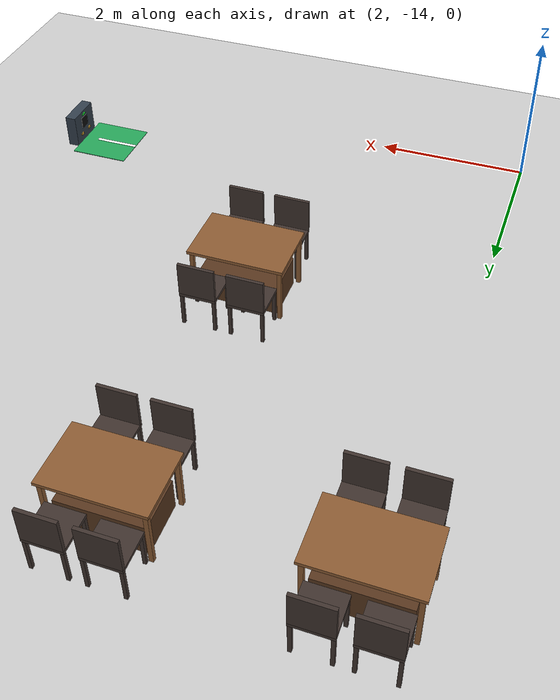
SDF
<sdf version="1.6">
 <world name="restaurant">
  <model name="ground_plane">
   <static>1</static>
   <link name="link">
    <collision name="collision">
     <geometry><plane><normal>0 0 1</normal><size>100 100</size></plane></geometry>
     <surface><friction><ode><mu>100</mu><mu2>50</mu2></ode></friction></surface>
    </collision>
    <visual name="visual">
     <cast_shadows>0</cast_shadows>
     <geometry><plane><normal>0 0 1</normal><size>100 100</size></plane></geometry>
     <material>
      <script><uri>file://media/materials/scripts/gazebo.material</uri><name>Gazebo/Grey</name></script>
     </material>
    </visual>
   </link>
  </model>
  <model name="table_16">
   <static>true</static>
   <pose>2.1640 -6.7909 0 0 0 0</pose>
   <link name="link">
    <collision name="base_collision">
     <pose>0.0000 0.0000 0.2000 0 0 0</pose>
     <geometry><box><size>1.0000 0.6000 0.4000</size></box></geometry>
    </collision>
    <visual name="base_visual">
     <pose>0.0000 0.0000 0.2000 0 0 0</pose>
     <geometry><box><size>1.0000 0.6000 0.4000</size></box></geometry>
     <material>
      <ambient>0.35 0.22 0.12 1</ambient>
      <diffuse>0.35 0.22 0.12 1</diffuse>
      <specular>0.05 0.05 0.05 1</specular>
     </material>
    </visual>
    <collision name="top_collision">
     <pose>0.0000 0.0000 0.7300 0 0 0</pose>
     <geometry><box><size>1.2000 0.8000 0.0400</size></box></geometry>
    </collision>
    <visual name="top_visual">
     <pose>0.0000 0.0000 0.7300 0 0 0</pose>
     <geometry><box><size>1.2000 0.8000 0.0400</size></box></geometry>
     <material>
      <ambient>0.55 0.36 0.2 1</ambient>
      <diffuse>0.55 0.36 0.2 1</diffuse>
      <specular>0.05 0.05 0.05 1</specular>
     </material>
    </visual>
    <collision name="leg0_collision">
     <pose>0.5500 0.3500 0.3550 0 0 0</pose>
     <geometry><box><size>0.0500 0.0500 0.7100</size></box></geometry>
    </collision>
    <visual name="leg0_visual">
     <pose>0.5500 0.3500 0.3550 0 0 0</pose>
     <geometry><box><size>0.0500 0.0500 0.7100</size></box></geometry>
     <material>
      <ambient>0.55 0.36 0.2 1</ambient>
      <diffuse>0.55 0.36 0.2 1</diffuse>
      <specular>0.05 0.05 0.05 1</specular>
     </material>
    </visual>
    <collision name="leg1_collision">
     <pose>0.5500 -0.3500 0.3550 0 0 0</pose>
     <geometry><box><size>0.0500 0.0500 0.7100</size></box></geometry>
    </collision>
    <visual name="leg1_visual">
     <pose>0.5500 -0.3500 0.3550 0 0 0</pose>
     <geometry><box><size>0.0500 0.0500 0.7100</size></box></geometry>
     <material>
      <ambient>0.55 0.36 0.2 1</ambient>
      <diffuse>0.55 0.36 0.2 1</diffuse>
      <specular>0.05 0.05 0.05 1</specular>
     </material>
    </visual>
    <collision name="leg2_collision">
     <pose>-0.5500 0.3500 0.3550 0 0 0</pose>
     <geometry><box><size>0.0500 0.0500 0.7100</size></box></geometry>
    </collision>
    <visual name="leg2_visual">
     <pose>-0.5500 0.3500 0.3550 0 0 0</pose>
     <geometry><box><size>0.0500 0.0500 0.7100</size></box></geometry>
     <material>
      <ambient>0.55 0.36 0.2 1</ambient>
      <diffuse>0.55 0.36 0.2 1</diffuse>
      <specular>0.05 0.05 0.05 1</specular>
     </material>
    </visual>
    <collision name="leg3_collision">
     <pose>-0.5500 -0.3500 0.3550 0 0 0</pose>
     <geometry><box><size>0.0500 0.0500 0.7100</size></box></geometry>
    </collision>
    <visual name="leg3_visual">
     <pose>-0.5500 -0.3500 0.3550 0 0 0</pose>
     <geometry><box><size>0.0500 0.0500 0.7100</size></box></geometry>
     <material>
      <ambient>0.55 0.36 0.2 1</ambient>
      <diffuse>0.55 0.36 0.2 1</diffuse>
      <specular>0.05 0.05 0.05 1</specular>
     </material>
    </visual>
    <collision name="chair0_seat_collision">
     <pose>-0.3000 0.6000 0.4500 0 0 0</pose>
     <geometry><box><size>0.4500 0.4500 0.0400</size></box></geometry>
    </collision>
    <visual name="chair0_seat_visual">
     <pose>-0.3000 0.6000 0.4500 0 0 0</pose>
     <geometry><box><size>0.4500 0.4500 0.0400</size></box></geometry>
     <material>
      <ambient>0.25 0.2 0.18 1</ambient>
      <diffuse>0.25 0.2 0.18 1</diffuse>
      <specular>0.05 0.05 0.05 1</specular>
     </material>
    </visual>
    <collision name="chair0_leg0_collision">
     <pose>-0.1000 0.8000 0.2150 0 0 0</pose>
     <geometry><box><size>0.0400 0.0400 0.4300</size></box></geometry>
    </collision>
    <visual name="chair0_leg0_visual">
     <pose>-0.1000 0.8000 0.2150 0 0 0</pose>
     <geometry><box><size>0.0400 0.0400 0.4300</size></box></geometry>
     <material>
      <ambient>0.25 0.2 0.18 1</ambient>
      <diffuse>0.25 0.2 0.18 1</diffuse>
      <specular>0.05 0.05 0.05 1</specular>
     </material>
    </visual>
    <collision name="chair0_leg1_collision">
     <pose>-0.1000 0.4000 0.2150 0 0 0</pose>
     <geometry><box><size>0.0400 0.0400 0.4300</size></box></geometry>
    </collision>
    <visual name="chair0_leg1_visual">
     <pose>-0.1000 0.4000 0.2150 0 0 0</pose>
     <geometry><box><size>0.0400 0.0400 0.4300</size></box></geometry>
     <material>
      <ambient>0.25 0.2 0.18 1</ambient>
      <diffuse>0.25 0.2 0.18 1</diffuse>
      <specular>0.05 0.05 0.05 1</specular>
     </material>
    </visual>
    <collision name="chair0_leg2_collision">
     <pose>-0.5000 0.8000 0.2150 0 0 0</pose>
     <geometry><box><size>0.0400 0.0400 0.4300</size></box></geometry>
    </collision>
    <visual name="chair0_leg2_visual">
     <pose>-0.5000 0.8000 0.2150 0 0 0</pose>
     <geometry><box><size>0.0400 0.0400 0.4300</size></box></geometry>
     <material>
      <ambient>0.25 0.2 0.18 1</ambient>
      <diffuse>0.25 0.2 0.18 1</diffuse>
      <specular>0.05 0.05 0.05 1</specular>
     </material>
    </visual>
    <collision name="chair0_leg3_collision">
     <pose>-0.5000 0.4000 0.2150 0 0 0</pose>
     <geometry><box><size>0.0400 0.0400 0.4300</size></box></geometry>
    </collision>
    <visual name="chair0_leg3_visual">
     <pose>-0.5000 0.4000 0.2150 0 0 0</pose>
     <geometry><box><size>0.0400 0.0400 0.4300</size></box></geometry>
     <material>
      <ambient>0.25 0.2 0.18 1</ambient>
      <diffuse>0.25 0.2 0.18 1</diffuse>
      <specular>0.05 0.05 0.05 1</specular>
     </material>
    </visual>
    <collision name="chair0_back_collision">
     <pose>-0.3000 0.8050 0.6850 0 0 0</pose>
     <geometry><box><size>0.4500 0.0400 0.4300</size></box></geometry>
    </collision>
    <visual name="chair0_back_visual">
     <pose>-0.3000 0.8050 0.6850 0 0 0</pose>
     <geometry><box><size>0.4500 0.0400 0.4300</size></box></geometry>
     <material>
      <ambient>0.25 0.2 0.18 1</ambient>
      <diffuse>0.25 0.2 0.18 1</diffuse>
      <specular>0.05 0.05 0.05 1</specular>
     </material>
    </visual>
    <collision name="chair1_seat_collision">
     <pose>-0.3000 -0.6000 0.4500 0 0 0</pose>
     <geometry><box><size>0.4500 0.4500 0.0400</size></box></geometry>
    </collision>
    <visual name="chair1_seat_visual">
     <pose>-0.3000 -0.6000 0.4500 0 0 0</pose>
     <geometry><box><size>0.4500 0.4500 0.0400</size></box></geometry>
     <material>
      <ambient>0.25 0.2 0.18 1</ambient>
      <diffuse>0.25 0.2 0.18 1</diffuse>
      <specular>0.05 0.05 0.05 1</specular>
     </material>
    </visual>
    <collision name="chair1_leg0_collision">
     <pose>-0.1000 -0.4000 0.2150 0 0 0</pose>
     <geometry><box><size>0.0400 0.0400 0.4300</size></box></geometry>
    </collision>
    <visual name="chair1_leg0_visual">
     <pose>-0.1000 -0.4000 0.2150 0 0 0</pose>
     <geometry><box><size>0.0400 0.0400 0.4300</size></box></geometry>
     <material>
      <ambient>0.25 0.2 0.18 1</ambient>
      <diffuse>0.25 0.2 0.18 1</diffuse>
      <specular>0.05 0.05 0.05 1</specular>
     </material>
    </visual>
    <collision name="chair1_leg1_collision">
     <pose>-0.1000 -0.8000 0.2150 0 0 0</pose>
     <geometry><box><size>0.0400 0.0400 0.4300</size></box></geometry>
    </collision>
    <visual name="chair1_leg1_visual">
     <pose>-0.1000 -0.8000 0.2150 0 0 0</pose>
     <geometry><box><size>0.0400 0.0400 0.4300</size></box></geometry>
     <material>
      <ambient>0.25 0.2 0.18 1</ambient>
      <diffuse>0.25 0.2 0.18 1</diffuse>
      <specular>0.05 0.05 0.05 1</specular>
     </material>
    </visual>
    <collision name="chair1_leg2_collision">
     <pose>-0.5000 -0.4000 0.2150 0 0 0</pose>
     <geometry><box><size>0.0400 0.0400 0.4300</size></box></geometry>
    </collision>
    <visual name="chair1_leg2_visual">
     <pose>-0.5000 -0.4000 0.2150 0 0 0</pose>
     <geometry><box><size>0.0400 0.0400 0.4300</size></box></geometry>
     <material>
      <ambient>0.25 0.2 0.18 1</ambient>
      <diffuse>0.25 0.2 0.18 1</diffuse>
      <specular>0.05 0.05 0.05 1</specular>
     </material>
    </visual>
    <collision name="chair1_leg3_collision">
     <pose>-0.5000 -0.8000 0.2150 0 0 0</pose>
     <geometry><box><size>0.0400 0.0400 0.4300</size></box></geometry>
    </collision>
    <visual name="chair1_leg3_visual">
     <pose>-0.5000 -0.8000 0.2150 0 0 0</pose>
     <geometry><box><size>0.0400 0.0400 0.4300</size></box></geometry>
     <material>
      <ambient>0.25 0.2 0.18 1</ambient>
      <diffuse>0.25 0.2 0.18 1</diffuse>
      <specular>0.05 0.05 0.05 1</specular>
     </material>
    </visual>
    <collision name="chair1_back_collision">
     <pose>-0.3000 -0.8050 0.6850 0 0 0</pose>
     <geometry><box><size>0.4500 0.0400 0.4300</size></box></geometry>
    </collision>
    <visual name="chair1_back_visual">
     <pose>-0.3000 -0.8050 0.6850 0 0 0</pose>
     <geometry><box><size>0.4500 0.0400 0.4300</size></box></geometry>
     <material>
      <ambient>0.25 0.2 0.18 1</ambient>
      <diffuse>0.25 0.2 0.18 1</diffuse>
      <specular>0.05 0.05 0.05 1</specular>
     </material>
    </visual>
    <collision name="chair2_seat_collision">
     <pose>0.3000 0.6000 0.4500 0 0 0</pose>
     <geometry><box><size>0.4500 0.4500 0.0400</size></box></geometry>
    </collision>
    <visual name="chair2_seat_visual">
     <pose>0.3000 0.6000 0.4500 0 0 0</pose>
     <geometry><box><size>0.4500 0.4500 0.0400</size></box></geometry>
     <material>
      <ambient>0.25 0.2 0.18 1</ambient>
      <diffuse>0.25 0.2 0.18 1</diffuse>
      <specular>0.05 0.05 0.05 1</specular>
     </material>
    </visual>
    <collision name="chair2_leg0_collision">
     <pose>0.5000 0.8000 0.2150 0 0 0</pose>
     <geometry><box><size>0.0400 0.0400 0.4300</size></box></geometry>
    </collision>
    <visual name="chair2_leg0_visual">
     <pose>0.5000 0.8000 0.2150 0 0 0</pose>
     <geometry><box><size>0.0400 0.0400 0.4300</size></box></geometry>
     <material>
      <ambient>0.25 0.2 0.18 1</ambient>
      <diffuse>0.25 0.2 0.18 1</diffuse>
      <specular>0.05 0.05 0.05 1</specular>
     </material>
    </visual>
    <collision name="chair2_leg1_collision">
     <pose>0.5000 0.4000 0.2150 0 0 0</pose>
     <geometry><box><size>0.0400 0.0400 0.4300</size></box></geometry>
    </collision>
    <visual name="chair2_leg1_visual">
     <pose>0.5000 0.4000 0.2150 0 0 0</pose>
     <geometry><box><size>0.0400 0.0400 0.4300</size></box></geometry>
     <material>
      <ambient>0.25 0.2 0.18 1</ambient>
      <diffuse>0.25 0.2 0.18 1</diffuse>
      <specular>0.05 0.05 0.05 1</specular>
     </material>
    </visual>
    <collision name="chair2_leg2_collision">
     <pose>0.1000 0.8000 0.2150 0 0 0</pose>
     <geometry><box><size>0.0400 0.0400 0.4300</size></box></geometry>
    </collision>
    <visual name="chair2_leg2_visual">
     <pose>0.1000 0.8000 0.2150 0 0 0</pose>
     <geometry><box><size>0.0400 0.0400 0.4300</size></box></geometry>
     <material>
      <ambient>0.25 0.2 0.18 1</ambient>
      <diffuse>0.25 0.2 0.18 1</diffuse>
      <specular>0.05 0.05 0.05 1</specular>
     </material>
    </visual>
    <collision name="chair2_leg3_collision">
     <pose>0.1000 0.4000 0.2150 0 0 0</pose>
     <geometry><box><size>0.0400 0.0400 0.4300</size></box></geometry>
    </collision>
    <visual name="chair2_leg3_visual">
     <pose>0.1000 0.4000 0.2150 0 0 0</pose>
     <geometry><box><size>0.0400 0.0400 0.4300</size></box></geometry>
     <material>
      <ambient>0.25 0.2 0.18 1</ambient>
      <diffuse>0.25 0.2 0.18 1</diffuse>
      <specular>0.05 0.05 0.05 1</specular>
     </material>
    </visual>
    <collision name="chair2_back_collision">
     <pose>0.3000 0.8050 0.6850 0 0 0</pose>
     <geometry><box><size>0.4500 0.0400 0.4300</size></box></geometry>
    </collision>
    <visual name="chair2_back_visual">
     <pose>0.3000 0.8050 0.6850 0 0 0</pose>
     <geometry><box><size>0.4500 0.0400 0.4300</size></box></geometry>
     <material>
      <ambient>0.25 0.2 0.18 1</ambient>
      <diffuse>0.25 0.2 0.18 1</diffuse>
      <specular>0.05 0.05 0.05 1</specular>
     </material>
    </visual>
    <collision name="chair3_seat_collision">
     <pose>0.3000 -0.6000 0.4500 0 0 0</pose>
     <geometry><box><size>0.4500 0.4500 0.0400</size></box></geometry>
    </collision>
    <visual name="chair3_seat_visual">
     <pose>0.3000 -0.6000 0.4500 0 0 0</pose>
     <geometry><box><size>0.4500 0.4500 0.0400</size></box></geometry>
     <material>
      <ambient>0.25 0.2 0.18 1</ambient>
      <diffuse>0.25 0.2 0.18 1</diffuse>
      <specular>0.05 0.05 0.05 1</specular>
     </material>
    </visual>
    <collision name="chair3_leg0_collision">
     <pose>0.5000 -0.4000 0.2150 0 0 0</pose>
     <geometry><box><size>0.0400 0.0400 0.4300</size></box></geometry>
    </collision>
    <visual name="chair3_leg0_visual">
     <pose>0.5000 -0.4000 0.2150 0 0 0</pose>
     <geometry><box><size>0.0400 0.0400 0.4300</size></box></geometry>
     <material>
      <ambient>0.25 0.2 0.18 1</ambient>
      <diffuse>0.25 0.2 0.18 1</diffuse>
      <specular>0.05 0.05 0.05 1</specular>
     </material>
    </visual>
    <collision name="chair3_leg1_collision">
     <pose>0.5000 -0.8000 0.2150 0 0 0</pose>
     <geometry><box><size>0.0400 0.0400 0.4300</size></box></geometry>
    </collision>
    <visual name="chair3_leg1_visual">
     <pose>0.5000 -0.8000 0.2150 0 0 0</pose>
     <geometry><box><size>0.0400 0.0400 0.4300</size></box></geometry>
     <material>
      <ambient>0.25 0.2 0.18 1</ambient>
      <diffuse>0.25 0.2 0.18 1</diffuse>
      <specular>0.05 0.05 0.05 1</specular>
     </material>
    </visual>
    <collision name="chair3_leg2_collision">
     <pose>0.1000 -0.4000 0.2150 0 0 0</pose>
     <geometry><box><size>0.0400 0.0400 0.4300</size></box></geometry>
    </collision>
    <visual name="chair3_leg2_visual">
     <pose>0.1000 -0.4000 0.2150 0 0 0</pose>
     <geometry><box><size>0.0400 0.0400 0.4300</size></box></geometry>
     <material>
      <ambient>0.25 0.2 0.18 1</ambient>
      <diffuse>0.25 0.2 0.18 1</diffuse>
      <specular>0.05 0.05 0.05 1</specular>
     </material>
    </visual>
    <collision name="chair3_leg3_collision">
     <pose>0.1000 -0.8000 0.2150 0 0 0</pose>
     <geometry><box><size>0.0400 0.0400 0.4300</size></box></geometry>
    </collision>
    <visual name="chair3_leg3_visual">
     <pose>0.1000 -0.8000 0.2150 0 0 0</pose>
     <geometry><box><size>0.0400 0.0400 0.4300</size></box></geometry>
     <material>
      <ambient>0.25 0.2 0.18 1</ambient>
      <diffuse>0.25 0.2 0.18 1</diffuse>
      <specular>0.05 0.05 0.05 1</specular>
     </material>
    </visual>
    <collision name="chair3_back_collision">
     <pose>0.3000 -0.8050 0.6850 0 0 0</pose>
     <geometry><box><size>0.4500 0.0400 0.4300</size></box></geometry>
    </collision>
    <visual name="chair3_back_visual">
     <pose>0.3000 -0.8050 0.6850 0 0 0</pose>
     <geometry><box><size>0.4500 0.0400 0.4300</size></box></geometry>
     <material>
      <ambient>0.25 0.2 0.18 1</ambient>
      <diffuse>0.25 0.2 0.18 1</diffuse>
      <specular>0.05 0.05 0.05 1</specular>
     </material>
    </visual>
   </link>
  </model>
  <model name="table_17">
   <static>true</static>
   <pose>4.7640 -6.7909 0 0 0 0</pose>
   <link name="link">
    <collision name="base_collision">
     <pose>0.0000 0.0000 0.2000 0 0 0</pose>
     <geometry><box><size>1.0000 0.6000 0.4000</size></box></geometry>
    </collision>
    <visual name="base_visual">
     <pose>0.0000 0.0000 0.2000 0 0 0</pose>
     <geometry><box><size>1.0000 0.6000 0.4000</size></box></geometry>
     <material>
      <ambient>0.35 0.22 0.12 1</ambient>
      <diffuse>0.35 0.22 0.12 1</diffuse>
      <specular>0.05 0.05 0.05 1</specular>
     </material>
    </visual>
    <collision name="top_collision">
     <pose>0.0000 0.0000 0.7300 0 0 0</pose>
     <geometry><box><size>1.2000 0.8000 0.0400</size></box></geometry>
    </collision>
    <visual name="top_visual">
     <pose>0.0000 0.0000 0.7300 0 0 0</pose>
     <geometry><box><size>1.2000 0.8000 0.0400</size></box></geometry>
     <material>
      <ambient>0.55 0.36 0.2 1</ambient>
      <diffuse>0.55 0.36 0.2 1</diffuse>
      <specular>0.05 0.05 0.05 1</specular>
     </material>
    </visual>
    <collision name="leg0_collision">
     <pose>0.5500 0.3500 0.3550 0 0 0</pose>
     <geometry><box><size>0.0500 0.0500 0.7100</size></box></geometry>
    </collision>
    <visual name="leg0_visual">
     <pose>0.5500 0.3500 0.3550 0 0 0</pose>
     <geometry><box><size>0.0500 0.0500 0.7100</size></box></geometry>
     <material>
      <ambient>0.55 0.36 0.2 1</ambient>
      <diffuse>0.55 0.36 0.2 1</diffuse>
      <specular>0.05 0.05 0.05 1</specular>
     </material>
    </visual>
    <collision name="leg1_collision">
     <pose>0.5500 -0.3500 0.3550 0 0 0</pose>
     <geometry><box><size>0.0500 0.0500 0.7100</size></box></geometry>
    </collision>
    <visual name="leg1_visual">
     <pose>0.5500 -0.3500 0.3550 0 0 0</pose>
     <geometry><box><size>0.0500 0.0500 0.7100</size></box></geometry>
     <material>
      <ambient>0.55 0.36 0.2 1</ambient>
      <diffuse>0.55 0.36 0.2 1</diffuse>
      <specular>0.05 0.05 0.05 1</specular>
     </material>
    </visual>
    <collision name="leg2_collision">
     <pose>-0.5500 0.3500 0.3550 0 0 0</pose>
     <geometry><box><size>0.0500 0.0500 0.7100</size></box></geometry>
    </collision>
    <visual name="leg2_visual">
     <pose>-0.5500 0.3500 0.3550 0 0 0</pose>
     <geometry><box><size>0.0500 0.0500 0.7100</size></box></geometry>
     <material>
      <ambient>0.55 0.36 0.2 1</ambient>
      <diffuse>0.55 0.36 0.2 1</diffuse>
      <specular>0.05 0.05 0.05 1</specular>
     </material>
    </visual>
    <collision name="leg3_collision">
     <pose>-0.5500 -0.3500 0.3550 0 0 0</pose>
     <geometry><box><size>0.0500 0.0500 0.7100</size></box></geometry>
    </collision>
    <visual name="leg3_visual">
     <pose>-0.5500 -0.3500 0.3550 0 0 0</pose>
     <geometry><box><size>0.0500 0.0500 0.7100</size></box></geometry>
     <material>
      <ambient>0.55 0.36 0.2 1</ambient>
      <diffuse>0.55 0.36 0.2 1</diffuse>
      <specular>0.05 0.05 0.05 1</specular>
     </material>
    </visual>
    <collision name="chair0_seat_collision">
     <pose>-0.3000 0.6000 0.4500 0 0 0</pose>
     <geometry><box><size>0.4500 0.4500 0.0400</size></box></geometry>
    </collision>
    <visual name="chair0_seat_visual">
     <pose>-0.3000 0.6000 0.4500 0 0 0</pose>
     <geometry><box><size>0.4500 0.4500 0.0400</size></box></geometry>
     <material>
      <ambient>0.25 0.2 0.18 1</ambient>
      <diffuse>0.25 0.2 0.18 1</diffuse>
      <specular>0.05 0.05 0.05 1</specular>
     </material>
    </visual>
    <collision name="chair0_leg0_collision">
     <pose>-0.1000 0.8000 0.2150 0 0 0</pose>
     <geometry><box><size>0.0400 0.0400 0.4300</size></box></geometry>
    </collision>
    <visual name="chair0_leg0_visual">
     <pose>-0.1000 0.8000 0.2150 0 0 0</pose>
     <geometry><box><size>0.0400 0.0400 0.4300</size></box></geometry>
     <material>
      <ambient>0.25 0.2 0.18 1</ambient>
      <diffuse>0.25 0.2 0.18 1</diffuse>
      <specular>0.05 0.05 0.05 1</specular>
     </material>
    </visual>
    <collision name="chair0_leg1_collision">
     <pose>-0.1000 0.4000 0.2150 0 0 0</pose>
     <geometry><box><size>0.0400 0.0400 0.4300</size></box></geometry>
    </collision>
    <visual name="chair0_leg1_visual">
     <pose>-0.1000 0.4000 0.2150 0 0 0</pose>
     <geometry><box><size>0.0400 0.0400 0.4300</size></box></geometry>
     <material>
      <ambient>0.25 0.2 0.18 1</ambient>
      <diffuse>0.25 0.2 0.18 1</diffuse>
      <specular>0.05 0.05 0.05 1</specular>
     </material>
    </visual>
    <collision name="chair0_leg2_collision">
     <pose>-0.5000 0.8000 0.2150 0 0 0</pose>
     <geometry><box><size>0.0400 0.0400 0.4300</size></box></geometry>
    </collision>
    <visual name="chair0_leg2_visual">
     <pose>-0.5000 0.8000 0.2150 0 0 0</pose>
     <geometry><box><size>0.0400 0.0400 0.4300</size></box></geometry>
     <material>
      <ambient>0.25 0.2 0.18 1</ambient>
      <diffuse>0.25 0.2 0.18 1</diffuse>
      <specular>0.05 0.05 0.05 1</specular>
     </material>
    </visual>
    <collision name="chair0_leg3_collision">
     <pose>-0.5000 0.4000 0.2150 0 0 0</pose>
     <geometry><box><size>0.0400 0.0400 0.4300</size></box></geometry>
    </collision>
    <visual name="chair0_leg3_visual">
     <pose>-0.5000 0.4000 0.2150 0 0 0</pose>
     <geometry><box><size>0.0400 0.0400 0.4300</size></box></geometry>
     <material>
      <ambient>0.25 0.2 0.18 1</ambient>
      <diffuse>0.25 0.2 0.18 1</diffuse>
      <specular>0.05 0.05 0.05 1</specular>
     </material>
    </visual>
    <collision name="chair0_back_collision">
     <pose>-0.3000 0.8050 0.6850 0 0 0</pose>
     <geometry><box><size>0.4500 0.0400 0.4300</size></box></geometry>
    </collision>
    <visual name="chair0_back_visual">
     <pose>-0.3000 0.8050 0.6850 0 0 0</pose>
     <geometry><box><size>0.4500 0.0400 0.4300</size></box></geometry>
     <material>
      <ambient>0.25 0.2 0.18 1</ambient>
      <diffuse>0.25 0.2 0.18 1</diffuse>
      <specular>0.05 0.05 0.05 1</specular>
     </material>
    </visual>
    <collision name="chair1_seat_collision">
     <pose>-0.3000 -0.6000 0.4500 0 0 0</pose>
     <geometry><box><size>0.4500 0.4500 0.0400</size></box></geometry>
    </collision>
    <visual name="chair1_seat_visual">
     <pose>-0.3000 -0.6000 0.4500 0 0 0</pose>
     <geometry><box><size>0.4500 0.4500 0.0400</size></box></geometry>
     <material>
      <ambient>0.25 0.2 0.18 1</ambient>
      <diffuse>0.25 0.2 0.18 1</diffuse>
      <specular>0.05 0.05 0.05 1</specular>
     </material>
    </visual>
    <collision name="chair1_leg0_collision">
     <pose>-0.1000 -0.4000 0.2150 0 0 0</pose>
     <geometry><box><size>0.0400 0.0400 0.4300</size></box></geometry>
    </collision>
    <visual name="chair1_leg0_visual">
     <pose>-0.1000 -0.4000 0.2150 0 0 0</pose>
     <geometry><box><size>0.0400 0.0400 0.4300</size></box></geometry>
     <material>
      <ambient>0.25 0.2 0.18 1</ambient>
      <diffuse>0.25 0.2 0.18 1</diffuse>
      <specular>0.05 0.05 0.05 1</specular>
     </material>
    </visual>
    <collision name="chair1_leg1_collision">
     <pose>-0.1000 -0.8000 0.2150 0 0 0</pose>
     <geometry><box><size>0.0400 0.0400 0.4300</size></box></geometry>
    </collision>
    <visual name="chair1_leg1_visual">
     <pose>-0.1000 -0.8000 0.2150 0 0 0</pose>
     <geometry><box><size>0.0400 0.0400 0.4300</size></box></geometry>
     <material>
      <ambient>0.25 0.2 0.18 1</ambient>
      <diffuse>0.25 0.2 0.18 1</diffuse>
      <specular>0.05 0.05 0.05 1</specular>
     </material>
    </visual>
    <collision name="chair1_leg2_collision">
     <pose>-0.5000 -0.4000 0.2150 0 0 0</pose>
     <geometry><box><size>0.0400 0.0400 0.4300</size></box></geometry>
    </collision>
    <visual name="chair1_leg2_visual">
     <pose>-0.5000 -0.4000 0.2150 0 0 0</pose>
     <geometry><box><size>0.0400 0.0400 0.4300</size></box></geometry>
     <material>
      <ambient>0.25 0.2 0.18 1</ambient>
      <diffuse>0.25 0.2 0.18 1</diffuse>
      <specular>0.05 0.05 0.05 1</specular>
     </material>
    </visual>
    <collision name="chair1_leg3_collision">
     <pose>-0.5000 -0.8000 0.2150 0 0 0</pose>
     <geometry><box><size>0.0400 0.0400 0.4300</size></box></geometry>
    </collision>
    <visual name="chair1_leg3_visual">
     <pose>-0.5000 -0.8000 0.2150 0 0 0</pose>
     <geometry><box><size>0.0400 0.0400 0.4300</size></box></geometry>
     <material>
      <ambient>0.25 0.2 0.18 1</ambient>
      <diffuse>0.25 0.2 0.18 1</diffuse>
      <specular>0.05 0.05 0.05 1</specular>
     </material>
    </visual>
    <collision name="chair1_back_collision">
     <pose>-0.3000 -0.8050 0.6850 0 0 0</pose>
     <geometry><box><size>0.4500 0.0400 0.4300</size></box></geometry>
    </collision>
    <visual name="chair1_back_visual">
     <pose>-0.3000 -0.8050 0.6850 0 0 0</pose>
     <geometry><box><size>0.4500 0.0400 0.4300</size></box></geometry>
     <material>
      <ambient>0.25 0.2 0.18 1</ambient>
      <diffuse>0.25 0.2 0.18 1</diffuse>
      <specular>0.05 0.05 0.05 1</specular>
     </material>
    </visual>
    <collision name="chair2_seat_collision">
     <pose>0.3000 0.6000 0.4500 0 0 0</pose>
     <geometry><box><size>0.4500 0.4500 0.0400</size></box></geometry>
    </collision>
    <visual name="chair2_seat_visual">
     <pose>0.3000 0.6000 0.4500 0 0 0</pose>
     <geometry><box><size>0.4500 0.4500 0.0400</size></box></geometry>
     <material>
      <ambient>0.25 0.2 0.18 1</ambient>
      <diffuse>0.25 0.2 0.18 1</diffuse>
      <specular>0.05 0.05 0.05 1</specular>
     </material>
    </visual>
    <collision name="chair2_leg0_collision">
     <pose>0.5000 0.8000 0.2150 0 0 0</pose>
     <geometry><box><size>0.0400 0.0400 0.4300</size></box></geometry>
    </collision>
    <visual name="chair2_leg0_visual">
     <pose>0.5000 0.8000 0.2150 0 0 0</pose>
     <geometry><box><size>0.0400 0.0400 0.4300</size></box></geometry>
     <material>
      <ambient>0.25 0.2 0.18 1</ambient>
      <diffuse>0.25 0.2 0.18 1</diffuse>
      <specular>0.05 0.05 0.05 1</specular>
     </material>
    </visual>
    <collision name="chair2_leg1_collision">
     <pose>0.5000 0.4000 0.2150 0 0 0</pose>
     <geometry><box><size>0.0400 0.0400 0.4300</size></box></geometry>
    </collision>
    <visual name="chair2_leg1_visual">
     <pose>0.5000 0.4000 0.2150 0 0 0</pose>
     <geometry><box><size>0.0400 0.0400 0.4300</size></box></geometry>
     <material>
      <ambient>0.25 0.2 0.18 1</ambient>
      <diffuse>0.25 0.2 0.18 1</diffuse>
      <specular>0.05 0.05 0.05 1</specular>
     </material>
    </visual>
    <collision name="chair2_leg2_collision">
     <pose>0.1000 0.8000 0.2150 0 0 0</pose>
     <geometry><box><size>0.0400 0.0400 0.4300</size></box></geometry>
    </collision>
    <visual name="chair2_leg2_visual">
     <pose>0.1000 0.8000 0.2150 0 0 0</pose>
     <geometry><box><size>0.0400 0.0400 0.4300</size></box></geometry>
     <material>
      <ambient>0.25 0.2 0.18 1</ambient>
      <diffuse>0.25 0.2 0.18 1</diffuse>
      <specular>0.05 0.05 0.05 1</specular>
     </material>
    </visual>
    <collision name="chair2_leg3_collision">
     <pose>0.1000 0.4000 0.2150 0 0 0</pose>
     <geometry><box><size>0.0400 0.0400 0.4300</size></box></geometry>
    </collision>
    <visual name="chair2_leg3_visual">
     <pose>0.1000 0.4000 0.2150 0 0 0</pose>
     <geometry><box><size>0.0400 0.0400 0.4300</size></box></geometry>
     <material>
      <ambient>0.25 0.2 0.18 1</ambient>
      <diffuse>0.25 0.2 0.18 1</diffuse>
      <specular>0.05 0.05 0.05 1</specular>
     </material>
    </visual>
    <collision name="chair2_back_collision">
     <pose>0.3000 0.8050 0.6850 0 0 0</pose>
     <geometry><box><size>0.4500 0.0400 0.4300</size></box></geometry>
    </collision>
    <visual name="chair2_back_visual">
     <pose>0.3000 0.8050 0.6850 0 0 0</pose>
     <geometry><box><size>0.4500 0.0400 0.4300</size></box></geometry>
     <material>
      <ambient>0.25 0.2 0.18 1</ambient>
      <diffuse>0.25 0.2 0.18 1</diffuse>
      <specular>0.05 0.05 0.05 1</specular>
     </material>
    </visual>
    <collision name="chair3_seat_collision">
     <pose>0.3000 -0.6000 0.4500 0 0 0</pose>
     <geometry><box><size>0.4500 0.4500 0.0400</size></box></geometry>
    </collision>
    <visual name="chair3_seat_visual">
     <pose>0.3000 -0.6000 0.4500 0 0 0</pose>
     <geometry><box><size>0.4500 0.4500 0.0400</size></box></geometry>
     <material>
      <ambient>0.25 0.2 0.18 1</ambient>
      <diffuse>0.25 0.2 0.18 1</diffuse>
      <specular>0.05 0.05 0.05 1</specular>
     </material>
    </visual>
    <collision name="chair3_leg0_collision">
     <pose>0.5000 -0.4000 0.2150 0 0 0</pose>
     <geometry><box><size>0.0400 0.0400 0.4300</size></box></geometry>
    </collision>
    <visual name="chair3_leg0_visual">
     <pose>0.5000 -0.4000 0.2150 0 0 0</pose>
     <geometry><box><size>0.0400 0.0400 0.4300</size></box></geometry>
     <material>
      <ambient>0.25 0.2 0.18 1</ambient>
      <diffuse>0.25 0.2 0.18 1</diffuse>
      <specular>0.05 0.05 0.05 1</specular>
     </material>
    </visual>
    <collision name="chair3_leg1_collision">
     <pose>0.5000 -0.8000 0.2150 0 0 0</pose>
     <geometry><box><size>0.0400 0.0400 0.4300</size></box></geometry>
    </collision>
    <visual name="chair3_leg1_visual">
     <pose>0.5000 -0.8000 0.2150 0 0 0</pose>
     <geometry><box><size>0.0400 0.0400 0.4300</size></box></geometry>
     <material>
      <ambient>0.25 0.2 0.18 1</ambient>
      <diffuse>0.25 0.2 0.18 1</diffuse>
      <specular>0.05 0.05 0.05 1</specular>
     </material>
    </visual>
    <collision name="chair3_leg2_collision">
     <pose>0.1000 -0.4000 0.2150 0 0 0</pose>
     <geometry><box><size>0.0400 0.0400 0.4300</size></box></geometry>
    </collision>
    <visual name="chair3_leg2_visual">
     <pose>0.1000 -0.4000 0.2150 0 0 0</pose>
     <geometry><box><size>0.0400 0.0400 0.4300</size></box></geometry>
     <material>
      <ambient>0.25 0.2 0.18 1</ambient>
      <diffuse>0.25 0.2 0.18 1</diffuse>
      <specular>0.05 0.05 0.05 1</specular>
     </material>
    </visual>
    <collision name="chair3_leg3_collision">
     <pose>0.1000 -0.8000 0.2150 0 0 0</pose>
     <geometry><box><size>0.0400 0.0400 0.4300</size></box></geometry>
    </collision>
    <visual name="chair3_leg3_visual">
     <pose>0.1000 -0.8000 0.2150 0 0 0</pose>
     <geometry><box><size>0.0400 0.0400 0.4300</size></box></geometry>
     <material>
      <ambient>0.25 0.2 0.18 1</ambient>
      <diffuse>0.25 0.2 0.18 1</diffuse>
      <specular>0.05 0.05 0.05 1</specular>
     </material>
    </visual>
    <collision name="chair3_back_collision">
     <pose>0.3000 -0.8050 0.6850 0 0 0</pose>
     <geometry><box><size>0.4500 0.0400 0.4300</size></box></geometry>
    </collision>
    <visual name="chair3_back_visual">
     <pose>0.3000 -0.8050 0.6850 0 0 0</pose>
     <geometry><box><size>0.4500 0.0400 0.4300</size></box></geometry>
     <material>
      <ambient>0.25 0.2 0.18 1</ambient>
      <diffuse>0.25 0.2 0.18 1</diffuse>
      <specular>0.05 0.05 0.05 1</specular>
     </material>
    </visual>
   </link>
  </model>
  <model name="table_23">
   <static>true</static>
   <pose>4.7640 -10.3909 0 0 0 0</pose>
   <link name="link">
    <collision name="base_collision">
     <pose>0.0000 0.0000 0.2000 0 0 0</pose>
     <geometry><box><size>1.0000 0.6000 0.4000</size></box></geometry>
    </collision>
    <visual name="base_visual">
     <pose>0.0000 0.0000 0.2000 0 0 0</pose>
     <geometry><box><size>1.0000 0.6000 0.4000</size></box></geometry>
     <material>
      <ambient>0.35 0.22 0.12 1</ambient>
      <diffuse>0.35 0.22 0.12 1</diffuse>
      <specular>0.05 0.05 0.05 1</specular>
     </material>
    </visual>
    <collision name="top_collision">
     <pose>0.0000 0.0000 0.7300 0 0 0</pose>
     <geometry><box><size>1.2000 0.8000 0.0400</size></box></geometry>
    </collision>
    <visual name="top_visual">
     <pose>0.0000 0.0000 0.7300 0 0 0</pose>
     <geometry><box><size>1.2000 0.8000 0.0400</size></box></geometry>
     <material>
      <ambient>0.55 0.36 0.2 1</ambient>
      <diffuse>0.55 0.36 0.2 1</diffuse>
      <specular>0.05 0.05 0.05 1</specular>
     </material>
    </visual>
    <collision name="leg0_collision">
     <pose>0.5500 0.3500 0.3550 0 0 0</pose>
     <geometry><box><size>0.0500 0.0500 0.7100</size></box></geometry>
    </collision>
    <visual name="leg0_visual">
     <pose>0.5500 0.3500 0.3550 0 0 0</pose>
     <geometry><box><size>0.0500 0.0500 0.7100</size></box></geometry>
     <material>
      <ambient>0.55 0.36 0.2 1</ambient>
      <diffuse>0.55 0.36 0.2 1</diffuse>
      <specular>0.05 0.05 0.05 1</specular>
     </material>
    </visual>
    <collision name="leg1_collision">
     <pose>0.5500 -0.3500 0.3550 0 0 0</pose>
     <geometry><box><size>0.0500 0.0500 0.7100</size></box></geometry>
    </collision>
    <visual name="leg1_visual">
     <pose>0.5500 -0.3500 0.3550 0 0 0</pose>
     <geometry><box><size>0.0500 0.0500 0.7100</size></box></geometry>
     <material>
      <ambient>0.55 0.36 0.2 1</ambient>
      <diffuse>0.55 0.36 0.2 1</diffuse>
      <specular>0.05 0.05 0.05 1</specular>
     </material>
    </visual>
    <collision name="leg2_collision">
     <pose>-0.5500 0.3500 0.3550 0 0 0</pose>
     <geometry><box><size>0.0500 0.0500 0.7100</size></box></geometry>
    </collision>
    <visual name="leg2_visual">
     <pose>-0.5500 0.3500 0.3550 0 0 0</pose>
     <geometry><box><size>0.0500 0.0500 0.7100</size></box></geometry>
     <material>
      <ambient>0.55 0.36 0.2 1</ambient>
      <diffuse>0.55 0.36 0.2 1</diffuse>
      <specular>0.05 0.05 0.05 1</specular>
     </material>
    </visual>
    <collision name="leg3_collision">
     <pose>-0.5500 -0.3500 0.3550 0 0 0</pose>
     <geometry><box><size>0.0500 0.0500 0.7100</size></box></geometry>
    </collision>
    <visual name="leg3_visual">
     <pose>-0.5500 -0.3500 0.3550 0 0 0</pose>
     <geometry><box><size>0.0500 0.0500 0.7100</size></box></geometry>
     <material>
      <ambient>0.55 0.36 0.2 1</ambient>
      <diffuse>0.55 0.36 0.2 1</diffuse>
      <specular>0.05 0.05 0.05 1</specular>
     </material>
    </visual>
    <collision name="chair0_seat_collision">
     <pose>-0.3000 0.6000 0.4500 0 0 0</pose>
     <geometry><box><size>0.4500 0.4500 0.0400</size></box></geometry>
    </collision>
    <visual name="chair0_seat_visual">
     <pose>-0.3000 0.6000 0.4500 0 0 0</pose>
     <geometry><box><size>0.4500 0.4500 0.0400</size></box></geometry>
     <material>
      <ambient>0.25 0.2 0.18 1</ambient>
      <diffuse>0.25 0.2 0.18 1</diffuse>
      <specular>0.05 0.05 0.05 1</specular>
     </material>
    </visual>
    <collision name="chair0_leg0_collision">
     <pose>-0.1000 0.8000 0.2150 0 0 0</pose>
     <geometry><box><size>0.0400 0.0400 0.4300</size></box></geometry>
    </collision>
    <visual name="chair0_leg0_visual">
     <pose>-0.1000 0.8000 0.2150 0 0 0</pose>
     <geometry><box><size>0.0400 0.0400 0.4300</size></box></geometry>
     <material>
      <ambient>0.25 0.2 0.18 1</ambient>
      <diffuse>0.25 0.2 0.18 1</diffuse>
      <specular>0.05 0.05 0.05 1</specular>
     </material>
    </visual>
    <collision name="chair0_leg1_collision">
     <pose>-0.1000 0.4000 0.2150 0 0 0</pose>
     <geometry><box><size>0.0400 0.0400 0.4300</size></box></geometry>
    </collision>
    <visual name="chair0_leg1_visual">
     <pose>-0.1000 0.4000 0.2150 0 0 0</pose>
     <geometry><box><size>0.0400 0.0400 0.4300</size></box></geometry>
     <material>
      <ambient>0.25 0.2 0.18 1</ambient>
      <diffuse>0.25 0.2 0.18 1</diffuse>
      <specular>0.05 0.05 0.05 1</specular>
     </material>
    </visual>
    <collision name="chair0_leg2_collision">
     <pose>-0.5000 0.8000 0.2150 0 0 0</pose>
     <geometry><box><size>0.0400 0.0400 0.4300</size></box></geometry>
    </collision>
    <visual name="chair0_leg2_visual">
     <pose>-0.5000 0.8000 0.2150 0 0 0</pose>
     <geometry><box><size>0.0400 0.0400 0.4300</size></box></geometry>
     <material>
      <ambient>0.25 0.2 0.18 1</ambient>
      <diffuse>0.25 0.2 0.18 1</diffuse>
      <specular>0.05 0.05 0.05 1</specular>
     </material>
    </visual>
    <collision name="chair0_leg3_collision">
     <pose>-0.5000 0.4000 0.2150 0 0 0</pose>
     <geometry><box><size>0.0400 0.0400 0.4300</size></box></geometry>
    </collision>
    <visual name="chair0_leg3_visual">
     <pose>-0.5000 0.4000 0.2150 0 0 0</pose>
     <geometry><box><size>0.0400 0.0400 0.4300</size></box></geometry>
     <material>
      <ambient>0.25 0.2 0.18 1</ambient>
      <diffuse>0.25 0.2 0.18 1</diffuse>
      <specular>0.05 0.05 0.05 1</specular>
     </material>
    </visual>
    <collision name="chair0_back_collision">
     <pose>-0.3000 0.8050 0.6850 0 0 0</pose>
     <geometry><box><size>0.4500 0.0400 0.4300</size></box></geometry>
    </collision>
    <visual name="chair0_back_visual">
     <pose>-0.3000 0.8050 0.6850 0 0 0</pose>
     <geometry><box><size>0.4500 0.0400 0.4300</size></box></geometry>
     <material>
      <ambient>0.25 0.2 0.18 1</ambient>
      <diffuse>0.25 0.2 0.18 1</diffuse>
      <specular>0.05 0.05 0.05 1</specular>
     </material>
    </visual>
    <collision name="chair1_seat_collision">
     <pose>-0.3000 -0.6000 0.4500 0 0 0</pose>
     <geometry><box><size>0.4500 0.4500 0.0400</size></box></geometry>
    </collision>
    <visual name="chair1_seat_visual">
     <pose>-0.3000 -0.6000 0.4500 0 0 0</pose>
     <geometry><box><size>0.4500 0.4500 0.0400</size></box></geometry>
     <material>
      <ambient>0.25 0.2 0.18 1</ambient>
      <diffuse>0.25 0.2 0.18 1</diffuse>
      <specular>0.05 0.05 0.05 1</specular>
     </material>
    </visual>
    <collision name="chair1_leg0_collision">
     <pose>-0.1000 -0.4000 0.2150 0 0 0</pose>
     <geometry><box><size>0.0400 0.0400 0.4300</size></box></geometry>
    </collision>
    <visual name="chair1_leg0_visual">
     <pose>-0.1000 -0.4000 0.2150 0 0 0</pose>
     <geometry><box><size>0.0400 0.0400 0.4300</size></box></geometry>
     <material>
      <ambient>0.25 0.2 0.18 1</ambient>
      <diffuse>0.25 0.2 0.18 1</diffuse>
      <specular>0.05 0.05 0.05 1</specular>
     </material>
    </visual>
    <collision name="chair1_leg1_collision">
     <pose>-0.1000 -0.8000 0.2150 0 0 0</pose>
     <geometry><box><size>0.0400 0.0400 0.4300</size></box></geometry>
    </collision>
    <visual name="chair1_leg1_visual">
     <pose>-0.1000 -0.8000 0.2150 0 0 0</pose>
     <geometry><box><size>0.0400 0.0400 0.4300</size></box></geometry>
     <material>
      <ambient>0.25 0.2 0.18 1</ambient>
      <diffuse>0.25 0.2 0.18 1</diffuse>
      <specular>0.05 0.05 0.05 1</specular>
     </material>
    </visual>
    <collision name="chair1_leg2_collision">
     <pose>-0.5000 -0.4000 0.2150 0 0 0</pose>
     <geometry><box><size>0.0400 0.0400 0.4300</size></box></geometry>
    </collision>
    <visual name="chair1_leg2_visual">
     <pose>-0.5000 -0.4000 0.2150 0 0 0</pose>
     <geometry><box><size>0.0400 0.0400 0.4300</size></box></geometry>
     <material>
      <ambient>0.25 0.2 0.18 1</ambient>
      <diffuse>0.25 0.2 0.18 1</diffuse>
      <specular>0.05 0.05 0.05 1</specular>
     </material>
    </visual>
    <collision name="chair1_leg3_collision">
     <pose>-0.5000 -0.8000 0.2150 0 0 0</pose>
     <geometry><box><size>0.0400 0.0400 0.4300</size></box></geometry>
    </collision>
    <visual name="chair1_leg3_visual">
     <pose>-0.5000 -0.8000 0.2150 0 0 0</pose>
     <geometry><box><size>0.0400 0.0400 0.4300</size></box></geometry>
     <material>
      <ambient>0.25 0.2 0.18 1</ambient>
      <diffuse>0.25 0.2 0.18 1</diffuse>
      <specular>0.05 0.05 0.05 1</specular>
     </material>
    </visual>
    <collision name="chair1_back_collision">
     <pose>-0.3000 -0.8050 0.6850 0 0 0</pose>
     <geometry><box><size>0.4500 0.0400 0.4300</size></box></geometry>
    </collision>
    <visual name="chair1_back_visual">
     <pose>-0.3000 -0.8050 0.6850 0 0 0</pose>
     <geometry><box><size>0.4500 0.0400 0.4300</size></box></geometry>
     <material>
      <ambient>0.25 0.2 0.18 1</ambient>
      <diffuse>0.25 0.2 0.18 1</diffuse>
      <specular>0.05 0.05 0.05 1</specular>
     </material>
    </visual>
    <collision name="chair2_seat_collision">
     <pose>0.3000 0.6000 0.4500 0 0 0</pose>
     <geometry><box><size>0.4500 0.4500 0.0400</size></box></geometry>
    </collision>
    <visual name="chair2_seat_visual">
     <pose>0.3000 0.6000 0.4500 0 0 0</pose>
     <geometry><box><size>0.4500 0.4500 0.0400</size></box></geometry>
     <material>
      <ambient>0.25 0.2 0.18 1</ambient>
      <diffuse>0.25 0.2 0.18 1</diffuse>
      <specular>0.05 0.05 0.05 1</specular>
     </material>
    </visual>
    <collision name="chair2_leg0_collision">
     <pose>0.5000 0.8000 0.2150 0 0 0</pose>
     <geometry><box><size>0.0400 0.0400 0.4300</size></box></geometry>
    </collision>
    <visual name="chair2_leg0_visual">
     <pose>0.5000 0.8000 0.2150 0 0 0</pose>
     <geometry><box><size>0.0400 0.0400 0.4300</size></box></geometry>
     <material>
      <ambient>0.25 0.2 0.18 1</ambient>
      <diffuse>0.25 0.2 0.18 1</diffuse>
      <specular>0.05 0.05 0.05 1</specular>
     </material>
    </visual>
    <collision name="chair2_leg1_collision">
     <pose>0.5000 0.4000 0.2150 0 0 0</pose>
     <geometry><box><size>0.0400 0.0400 0.4300</size></box></geometry>
    </collision>
    <visual name="chair2_leg1_visual">
     <pose>0.5000 0.4000 0.2150 0 0 0</pose>
     <geometry><box><size>0.0400 0.0400 0.4300</size></box></geometry>
     <material>
      <ambient>0.25 0.2 0.18 1</ambient>
      <diffuse>0.25 0.2 0.18 1</diffuse>
      <specular>0.05 0.05 0.05 1</specular>
     </material>
    </visual>
    <collision name="chair2_leg2_collision">
     <pose>0.1000 0.8000 0.2150 0 0 0</pose>
     <geometry><box><size>0.0400 0.0400 0.4300</size></box></geometry>
    </collision>
    <visual name="chair2_leg2_visual">
     <pose>0.1000 0.8000 0.2150 0 0 0</pose>
     <geometry><box><size>0.0400 0.0400 0.4300</size></box></geometry>
     <material>
      <ambient>0.25 0.2 0.18 1</ambient>
      <diffuse>0.25 0.2 0.18 1</diffuse>
      <specular>0.05 0.05 0.05 1</specular>
     </material>
    </visual>
    <collision name="chair2_leg3_collision">
     <pose>0.1000 0.4000 0.2150 0 0 0</pose>
     <geometry><box><size>0.0400 0.0400 0.4300</size></box></geometry>
    </collision>
    <visual name="chair2_leg3_visual">
     <pose>0.1000 0.4000 0.2150 0 0 0</pose>
     <geometry><box><size>0.0400 0.0400 0.4300</size></box></geometry>
     <material>
      <ambient>0.25 0.2 0.18 1</ambient>
      <diffuse>0.25 0.2 0.18 1</diffuse>
      <specular>0.05 0.05 0.05 1</specular>
     </material>
    </visual>
    <collision name="chair2_back_collision">
     <pose>0.3000 0.8050 0.6850 0 0 0</pose>
     <geometry><box><size>0.4500 0.0400 0.4300</size></box></geometry>
    </collision>
    <visual name="chair2_back_visual">
     <pose>0.3000 0.8050 0.6850 0 0 0</pose>
     <geometry><box><size>0.4500 0.0400 0.4300</size></box></geometry>
     <material>
      <ambient>0.25 0.2 0.18 1</ambient>
      <diffuse>0.25 0.2 0.18 1</diffuse>
      <specular>0.05 0.05 0.05 1</specular>
     </material>
    </visual>
    <collision name="chair3_seat_collision">
     <pose>0.3000 -0.6000 0.4500 0 0 0</pose>
     <geometry><box><size>0.4500 0.4500 0.0400</size></box></geometry>
    </collision>
    <visual name="chair3_seat_visual">
     <pose>0.3000 -0.6000 0.4500 0 0 0</pose>
     <geometry><box><size>0.4500 0.4500 0.0400</size></box></geometry>
     <material>
      <ambient>0.25 0.2 0.18 1</ambient>
      <diffuse>0.25 0.2 0.18 1</diffuse>
      <specular>0.05 0.05 0.05 1</specular>
     </material>
    </visual>
    <collision name="chair3_leg0_collision">
     <pose>0.5000 -0.4000 0.2150 0 0 0</pose>
     <geometry><box><size>0.0400 0.0400 0.4300</size></box></geometry>
    </collision>
    <visual name="chair3_leg0_visual">
     <pose>0.5000 -0.4000 0.2150 0 0 0</pose>
     <geometry><box><size>0.0400 0.0400 0.4300</size></box></geometry>
     <material>
      <ambient>0.25 0.2 0.18 1</ambient>
      <diffuse>0.25 0.2 0.18 1</diffuse>
      <specular>0.05 0.05 0.05 1</specular>
     </material>
    </visual>
    <collision name="chair3_leg1_collision">
     <pose>0.5000 -0.8000 0.2150 0 0 0</pose>
     <geometry><box><size>0.0400 0.0400 0.4300</size></box></geometry>
    </collision>
    <visual name="chair3_leg1_visual">
     <pose>0.5000 -0.8000 0.2150 0 0 0</pose>
     <geometry><box><size>0.0400 0.0400 0.4300</size></box></geometry>
     <material>
      <ambient>0.25 0.2 0.18 1</ambient>
      <diffuse>0.25 0.2 0.18 1</diffuse>
      <specular>0.05 0.05 0.05 1</specular>
     </material>
    </visual>
    <collision name="chair3_leg2_collision">
     <pose>0.1000 -0.4000 0.2150 0 0 0</pose>
     <geometry><box><size>0.0400 0.0400 0.4300</size></box></geometry>
    </collision>
    <visual name="chair3_leg2_visual">
     <pose>0.1000 -0.4000 0.2150 0 0 0</pose>
     <geometry><box><size>0.0400 0.0400 0.4300</size></box></geometry>
     <material>
      <ambient>0.25 0.2 0.18 1</ambient>
      <diffuse>0.25 0.2 0.18 1</diffuse>
      <specular>0.05 0.05 0.05 1</specular>
     </material>
    </visual>
    <collision name="chair3_leg3_collision">
     <pose>0.1000 -0.8000 0.2150 0 0 0</pose>
     <geometry><box><size>0.0400 0.0400 0.4300</size></box></geometry>
    </collision>
    <visual name="chair3_leg3_visual">
     <pose>0.1000 -0.8000 0.2150 0 0 0</pose>
     <geometry><box><size>0.0400 0.0400 0.4300</size></box></geometry>
     <material>
      <ambient>0.25 0.2 0.18 1</ambient>
      <diffuse>0.25 0.2 0.18 1</diffuse>
      <specular>0.05 0.05 0.05 1</specular>
     </material>
    </visual>
    <collision name="chair3_back_collision">
     <pose>0.3000 -0.8050 0.6850 0 0 0</pose>
     <geometry><box><size>0.4500 0.0400 0.4300</size></box></geometry>
    </collision>
    <visual name="chair3_back_visual">
     <pose>0.3000 -0.8050 0.6850 0 0 0</pose>
     <geometry><box><size>0.4500 0.0400 0.4300</size></box></geometry>
     <material>
      <ambient>0.25 0.2 0.18 1</ambient>
      <diffuse>0.25 0.2 0.18 1</diffuse>
      <specular>0.05 0.05 0.05 1</specular>
     </material>
    </visual>
   </link>
  </model>
  <model name="docking_station">
   <static>true</static>
   <pose>7.8500 -12.7900 0 0 0 3.14159</pose>
   <link name="link">
    <visual name="pad_visual">
     <pose>0 0 0.005 0 0 0</pose>
     <geometry><box><size>0.8 0.8 0.01</size></box></geometry>
     <material>
      <ambient>0.15 0.65 0.35 1</ambient>
      <diffuse>0.15 0.65 0.35 1</diffuse>
      <specular>0.1 0.1 0.1 1</specular>
     </material>
    </visual>
    <visual name="pad_guide_line">
     <pose>0.1 0 0.011 0 0 0</pose>
     <geometry><box><size>0.6 0.05 0.002</size></box></geometry>
     <material><ambient>1 1 1 1</ambient><diffuse>1 1 1 1</diffuse></material>
    </visual>
    <collision name="tower_collision">
     <pose>-0.475 0 0.225 0 0 0</pose>
     <geometry><box><size>0.15 0.5 0.45</size></box></geometry>
    </collision>
    <visual name="tower_visual">
     <pose>-0.475 0 0.225 0 0 0</pose>
     <geometry><box><size>0.15 0.5 0.45</size></box></geometry>
     <material>
      <ambient>0.2 0.25 0.3 1</ambient>
      <diffuse>0.2 0.25 0.3 1</diffuse>
      <specular>0.2 0.2 0.2 1</specular>
     </material>
    </visual>
    <visual name="contact_left">
     <pose>-0.395 0.1 0.12 0 0 0</pose>
     <geometry><box><size>0.01 0.06 0.03</size></box></geometry>
     <material>
      <ambient>0.85 0.65 0.2 1</ambient>
      <diffuse>0.85 0.65 0.2 1</diffuse>
      <specular>0.8 0.8 0.8 1</specular>
     </material>
    </visual>
    <visual name="contact_right">
     <pose>-0.395 -0.1 0.12 0 0 0</pose>
     <geometry><box><size>0.01 0.06 0.03</size></box></geometry>
     <material>
      <ambient>0.85 0.65 0.2 1</ambient>
      <diffuse>0.85 0.65 0.2 1</diffuse>
      <specular>0.8 0.8 0.8 1</specular>
     </material>
    </visual>
    <visual name="status_led">
     <pose>-0.395 0 0.4 0 0 0</pose>
     <geometry><box><size>0.01 0.08 0.02</size></box></geometry>
     <material>
      <ambient>0.1 1 0.2 1</ambient>
      <diffuse>0.1 1 0.2 1</diffuse>
      <emissive>0.1 1 0.2 1</emissive>
     </material>
    </visual>
    <visual name="marker_panel">
     <pose>-0.397 0 0.28 0 0 0</pose>
     <geometry><box><size>0.005 0.16 0.16</size></box></geometry>
     <material><ambient>0.05 0.05 0.05 1</ambient><diffuse>0.05 0.05 0.05 1</diffuse></material>
    </visual>
    <visual name="marker_centre">
     <pose>-0.4 0 0.28 0 0 0</pose>
     <geometry><box><size>0.005 0.08 0.08</size></box></geometry>
     <material><ambient>1 1 1 1</ambient><diffuse>1 1 1 1</diffuse></material>
    </visual>
   </link>
  </model>
 </world>
</sdf>
